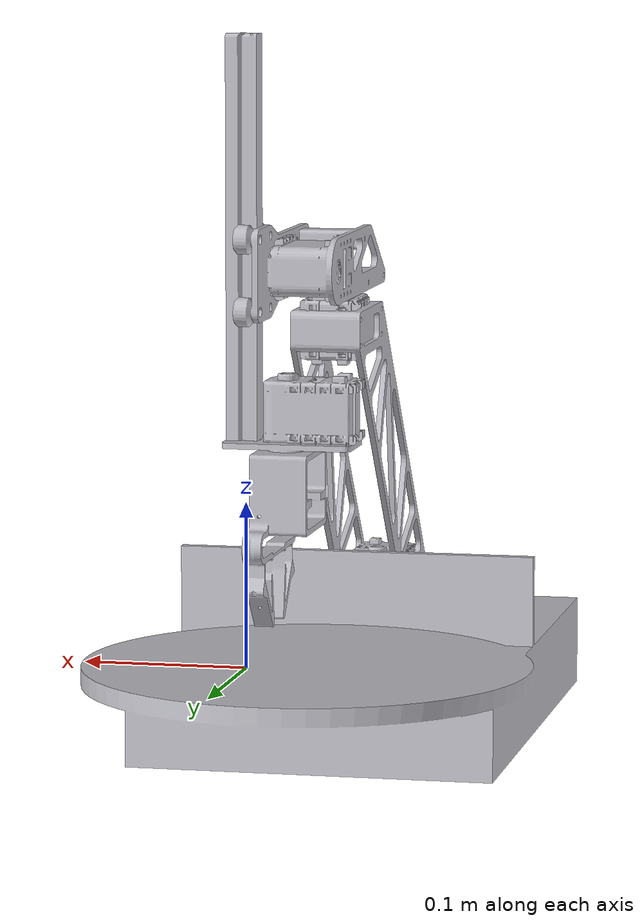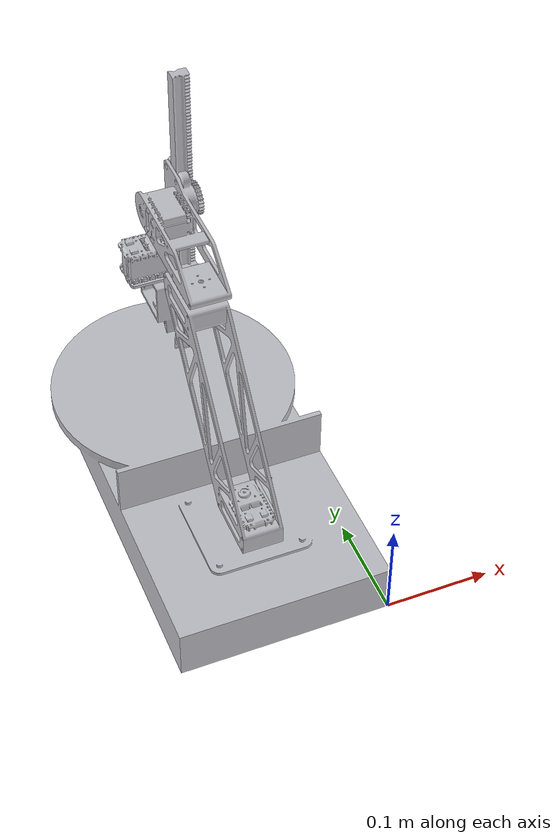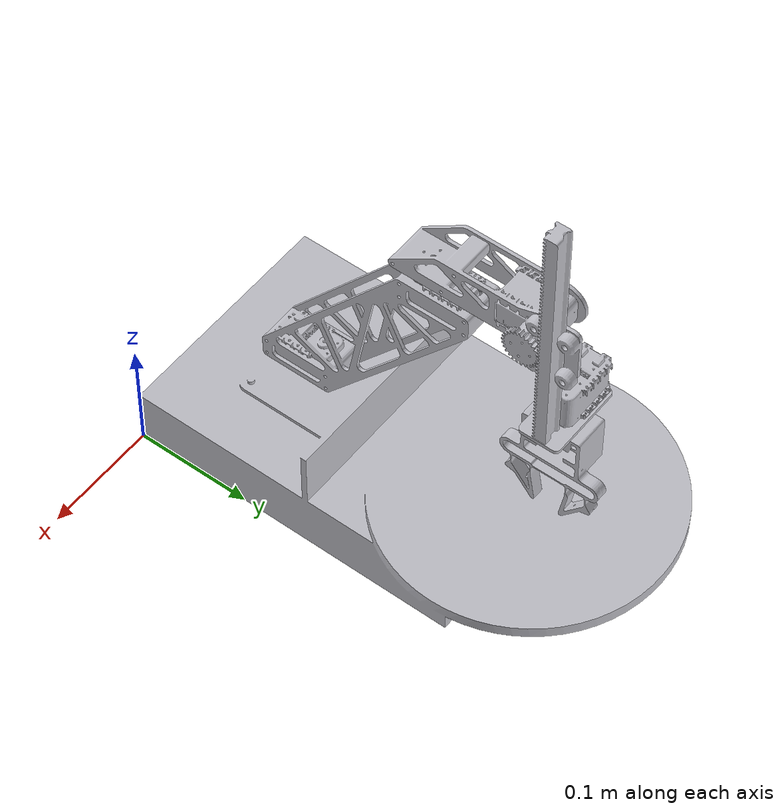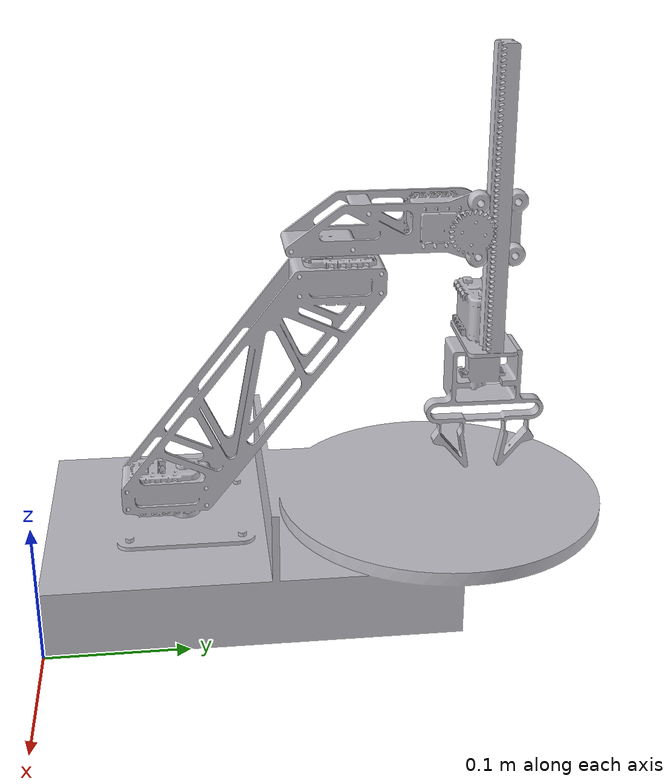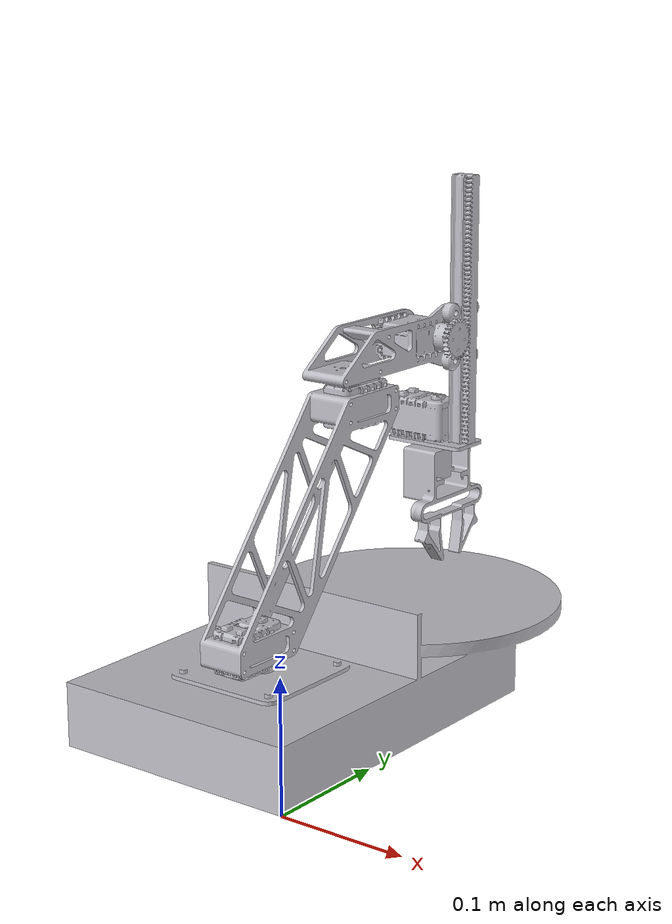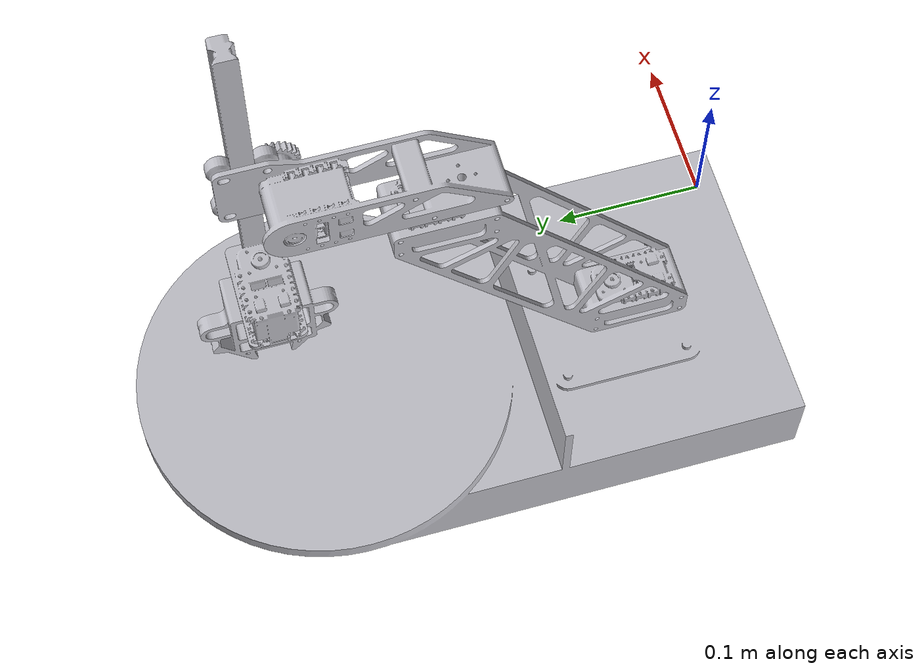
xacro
<?xml version="1.0" ?>
<robot name="Robot" xmlns:xacro="http://www.ros.org/wiki/xacro">

<xacro:include filename="$(find Robot_description)/urdf/materials.xacro" />
<xacro:include filename="$(find Robot_description)/urdf/Robot.trans" />
<xacro:include filename="$(find Robot_description)/urdf/Robot.gazebo" />

<link name="world"/>

<joint name="baseToWorld" type="fixed">
  <origin rpy="${pi / 2} 0 0" />
  <parent link="world"/>
  <child link="base_link"/>
</joint>

<link name="base_link">
  <inertial>
    <origin rpy="0 0 0" xyz="-0.10000000000000094 0.030204208236193887 -0.16307312251777806"/>
    <mass value="3.4791202059222757"/>
    <inertia ixx="0.031665" ixy="-0.0" ixz="0.0" iyy="0.042077" iyz="0.001586" izz="0.012633"/>
  </inertial>
  <visual>
    <origin rpy="0 0 0" xyz="0 0 0"/>
    <geometry>
      <mesh filename="package://Robot_description/meshes/base_link.stl" scale="0.001 0.001 0.001"/>
    </geometry>
    <material name="silver"/>
  </visual>
  <collision>
    <origin rpy="0 0 0" xyz="0 0 0"/>
    <geometry>
      <mesh filename="package://Robot_description/meshes/base_link.stl" scale="0.001 0.001 0.001"/>
    </geometry>
  </collision>
</link>

<joint name="Rev8" type="revolute">
  <origin rpy="0 0 0" xyz="-0.1 0.053 -0.1"/>
  <parent link="base_link"/>
  <child link="link_1_1_1_1"/>
  <axis xyz="0.0 -1.0 0.0"/>
  <limit effort="100" lower="${-pi*150/180}" upper="${pi*150/180}" velocity="100"/>
</joint>

<link name="link_1_1_1_1">
  <inertial>
    <origin rpy="0 0 0" xyz="1.2308955858450488e-05 0.10020544292648656 -0.05013429985790946"/>
    <mass value="0.21441154770878204"/>
    <inertia ixx="0.001813" ixy="0.0" ixz="-0.0" iyy="0.000768" iyz="0.00082" izz="0.001123"/>
  </inertial>
  <visual>
    <origin rpy="0 0 0" xyz="0.1 -0.053 0.1"/>
    <geometry>
      <mesh filename="package://Robot_description/meshes/link_1_1_1_1.stl" scale="0.001 0.001 0.001"/>
    </geometry>
    <material name="silver"/>
  </visual>
  <collision>
    <origin rpy="0 0 0" xyz="0.1 -0.053 0.1"/>
    <geometry>
      <mesh filename="package://Robot_description/meshes/link_1_1_1_1.stl" scale="0.001 0.001 0.001"/>
    </geometry>
  </collision>
</link>

<joint name="Rev9" type="revolute">
  <origin rpy="0 0 0" xyz="0.0 0.2 -0.1"/>
  <parent link="link_1_1_1_1"/>
  <child link="link_2_1_1_1"/>
  <axis xyz="0.0 1.0 0.0"/>
  <limit effort="100" lower="${-pi*150/180}" upper="${pi*150/180}" velocity="100"/>
</joint>

<link name="link_2_1_1_1">
  <inertial>
    <origin rpy="0 0 0" xyz="0.003962379945163755 0.015741079117298384 -0.06910776946682196"/>
    <mass value="0.12524639131958526"/>
    <inertia ixx="0.000235" ixy="-1e-06" ixz="2.2e-05" iyy="0.000249" iyz="1.6e-05" izz="4.6e-05"/>
  </inertial>
  <visual>
    <origin rpy="0 0 0" xyz="0.1 -0.253 0.2"/>
    <geometry>
      <mesh filename="package://Robot_description/meshes/link_2_1_1_1.stl" scale="0.001 0.001 0.001"/>
    </geometry>
    <material name="silver"/>
  </visual>
  <collision>
    <origin rpy="0 0 0" xyz="0.1 -0.253 0.2"/>
    <geometry>
      <mesh filename="package://Robot_description/meshes/link_2_1_1_1.stl" scale="0.001 0.001 0.001"/>
    </geometry>
  </collision>
</link>

<joint name="Slider11" type="prismatic">
  <origin rpy="0 0 0" xyz="0.019 0.03633 -0.105495"/>
  <parent link="link_2_1_1_1"/>
  <child link="link_3_1_1_1"/>
  <axis xyz="0.0 -1.0 0.0"/>
  <limit effort="100" lower="-0.036" upper="0.096" velocity="100"/>
</joint>

<link name="link_3_1_1_1">
  <inertial>
    <origin rpy="0 0 0" xyz="-0.010433493561912408 -0.05364218820900604 -0.012962459265309978"/>
    <mass value="0.09269511207913636"/>
    <inertia ixx="0.000359" ixy="-6.7e-05" ixz="0.0" iyy="4.4e-05" iyz="1e-06" izz="0.000395"/>
  </inertial>
  <visual>
    <origin rpy="0 0 0" xyz="0.081 -0.28933 0.305495"/>
    <geometry>
      <mesh filename="package://Robot_description/meshes/link_3_1_1_1.stl" scale="0.001 0.001 0.001"/>
    </geometry>
    <material name="silver"/>
  </visual>
  <collision>
    <origin rpy="0 0 0" xyz="0.081 -0.28933 0.305495"/>
    <geometry>
      <mesh filename="package://Robot_description/meshes/link_3_1_1_1.stl" scale="0.001 0.001 0.001"/>
    </geometry>
  </collision>
</link>

<joint name="Rev10" type="revolute">
  <origin rpy="0 0 0" xyz="-0.015 -0.110657 -0.012771"/>
  <parent link="link_3_1_1_1"/>
  <child link="link_4_1_1_1"/>
  <axis xyz="-0.0 -1.0 -0.0"/>
  <limit effort="100" lower="${-pi*150/180}" upper="${pi*150/180}" velocity="100"/>
</joint>

<link name="link_4_1_1_1">
  <inertial>
    <origin rpy="0 0 0" xyz="0.0024869584478057066 -0.031379057486560585 5.9295509331980245e-05"/>
    <mass value="0.034526075690169286"/>
    <inertia ixx="3.1e-05" ixy="3e-06" ixz="0.0" iyy="1.5e-05" iyz="0.0" izz="2.1e-05"/>
  </inertial>
  <visual>
    <origin rpy="0 0 0" xyz="0.096 -0.178673 0.318266"/>
    <geometry>
      <mesh filename="package://Robot_description/meshes/link_4_1_1_1.stl" scale="0.001 0.001 0.001"/>
    </geometry>
    <material name="silver"/>
  </visual>
  <collision>
    <origin rpy="0 0 0" xyz="0.096 -0.178673 0.318266"/>
    <geometry>
      <mesh filename="package://Robot_description/meshes/link_4_1_1_1.stl" scale="0.001 0.001 0.001"/>
    </geometry>
  </collision>
</link>

</robot>

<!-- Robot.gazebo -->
<robot name="Robot" xmlns:xacro="http://www.ros.org/wiki/xacro" >

<xacro:property name="body_color" value="Gazebo/Silver" />

<gazebo>
  <plugin filename="libgazebo_ros_control.so" name="ros_gazebo_control">
    <robotNamespace>/Robot</robotNamespace>
  </plugin>
</gazebo>

<gazebo reference="base_link">
  <material>${body_color}</material>
  <mu1>0.2</mu1>
  <mu2>0.2</mu2>
  <selfCollide>true</selfCollide>
  <gravity>true</gravity>
</gazebo>

<gazebo reference="link_1_1_1_1">
  <material>${body_color}</material>
  <mu1>0.2</mu1>
  <mu2>0.2</mu2>
  <selfCollide>true</selfCollide>
</gazebo>

<gazebo reference="link_2_1_1_1">
  <material>${body_color}</material>
  <mu1>0.2</mu1>
  <mu2>0.2</mu2>
  <selfCollide>true</selfCollide>
</gazebo>

<gazebo reference="link_4_1_1_1">
  <material>${body_color}</material>
  <mu1>0.2</mu1>
  <mu2>0.2</mu2>
  <selfCollide>true</selfCollide>
</gazebo>

<gazebo reference="link_3_1_1_1">
  <material>${body_color}</material>
  <mu1>0.2</mu1>
  <mu2>0.2</mu2>
  <selfCollide>true</selfCollide>
</gazebo>

</robot>
